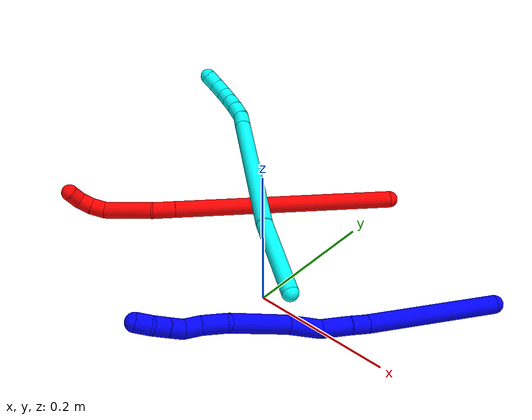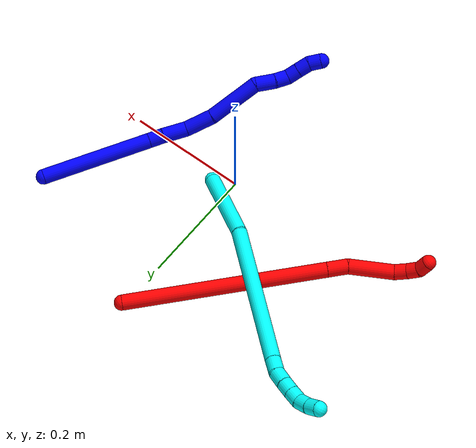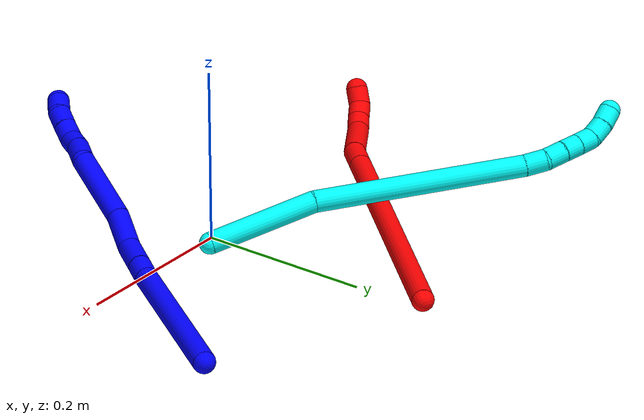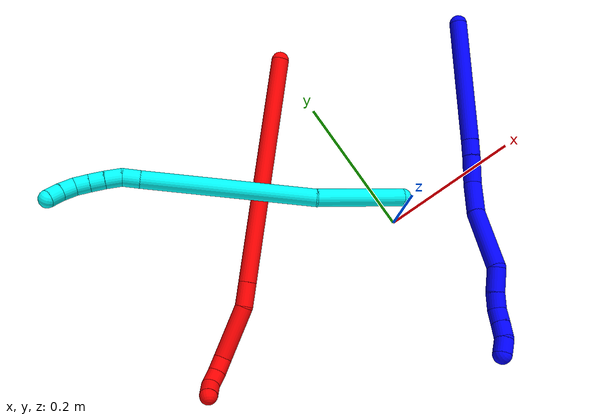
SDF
<sdf version="1.7">
 <world name="default">
  <plugin name="TubeGeneratorPlugin" filename="libtube_generator_plugin.so"/>
  <model name="photoneo_s_sensor">
   <static>1</static>
   <pose>0 0 2 1.57079 1.57079 3.14159</pose>
   <link name="link">
    <inertial><mass>0.1</mass></inertial>
    <sensor name="sensor" type="depth">
     <update_rate>30</update_rate>
     <camera>
      <horizontal_fov>1.22</horizontal_fov>
      <image><width>1920</width><height>1200</height><format>B8G8R8</format></image>
      <clip><near>0.1</near><far>4</far></clip>
      <depth_camera><output>points</output></depth_camera>
     </camera>
     <plugin name="camera_plugin" filename="libgazebo_ros_depth_camera.so">
      <baseline>0.2</baseline>
      <alwaysOn>1</alwaysOn>
      <updateRate>0.0</updateRate>
      <cameraName>camera_ir</cameraName>
      <imageTopicName>/camera/color/image_raw</imageTopicName>
      <cameraInfoTopicName>/camera/color/camera_info</cameraInfoTopicName>
      <depthImageTopicName>/camera/depth/image_raw</depthImageTopicName>
      <depthImageCameraInfoTopicName>/camera/depth/camera_info</depthImageCameraInfoTopicName>
      <pointCloudTopicName>/camera/depth/points</pointCloudTopicName>
      <frameName>fr_optical</frameName>
      <pointCloudCutoff>0.1</pointCloudCutoff>
      <pointCloudCutoffMax>2.0</pointCloudCutoffMax>
      <distortionK1>0</distortionK1>
      <distortionK2>0</distortionK2>
      <distortionK3>0</distortionK3>
      <distortionT1>0</distortionT1>
      <distortionT2>0</distortionT2>
      <CxPrime>0</CxPrime>
      <Cx>0</Cx>
      <Cy>0</Cy>
      <focalLength>0</focalLength>
      <hackBaseline>0</hackBaseline>
     </plugin>
    </sensor>
   </link>
  </model>
  <gravity>0 0 -9.8</gravity>
  <magnetic_field>6e-06 2.3e-05 -4.2e-05</magnetic_field>
  <atmosphere type="adiabatic"/>
  <physics name="default_physics" default="0" type="ode">
   <max_step_size>0.003</max_step_size>
   <real_time_factor>1</real_time_factor>
   <real_time_update_rate>1000</real_time_update_rate>
   <max_contacts>10000</max_contacts>
   <ode>
    <solver>
     <type>quick</type>
     <iters>100</iters>
     <sor>1.3</sor>
     <use_dynamic_moi_rescaling>0</use_dynamic_moi_rescaling>
    </solver>
    <constraints>
     <contact_max_correcting_vel>0</contact_max_correcting_vel>
     <contact_surface_layer>0.001</contact_surface_layer>
     <cfm>0</cfm>
     <erp>0.2</erp>
    </constraints>
   </ode>
  </physics>
  <scene><ambient>0.4 0.4 0.4 1</ambient><background>0.7 0.7 0.7 1</background><shadows>0</shadows></scene>
  <audio><device>default</device></audio>
  <spherical_coordinates>
   <surface_model>EARTH_WGS84</surface_model>
   <latitude_deg>0</latitude_deg>
   <longitude_deg>0</longitude_deg>
   <elevation>0</elevation>
   <heading_deg>0</heading_deg>
  </spherical_coordinates>
  <model name="bin">
   <static>1</static>
   <link name="bottom">
    <collision name="collision-bottom">
     <pose>0 0 -0.01 0 -0 0</pose>
     <geometry><box><size>0.8 0.6 0.02</size></box></geometry>
     <surface>
      <friction><ode><mu>100</mu><mu2>100</mu2></ode></friction>
      <contact><collide_bitmask>65535</collide_bitmask></contact>
     </surface>
    </collision>
   </link>
   <link name="west_wall">
    <collision name="collision-west_wall">
     <pose>-0.41 0 0.1 0 -0 0</pose>
     <geometry><box><size>0.02 0.6 0.2</size></box></geometry>
     <surface>
      <friction><ode><mu>100</mu><mu2>100</mu2></ode></friction>
      <contact><collide_bitmask>65535</collide_bitmask></contact>
     </surface>
    </collision>
   </link>
   <link name="east_wall">
    <collision name="collision-east_wall">
     <pose>0.41 0 0.1 0 -0 0</pose>
     <geometry><box><size>0.02 0.6 0.2</size></box></geometry>
     <surface>
      <friction><ode><mu>100</mu><mu2>100</mu2></ode></friction>
      <contact><collide_bitmask>65535</collide_bitmask></contact>
     </surface>
    </collision>
   </link>
   <link name="south_wall">
    <collision name="collision-south_wall">
     <pose>0 -0.31 0.1 0 -0 0</pose>
     <geometry><box><size>0.8 0.02 0.2</size></box></geometry>
     <surface>
      <friction><ode><mu>100</mu><mu2>100</mu2></ode></friction>
      <contact><collide_bitmask>65535</collide_bitmask></contact>
     </surface>
    </collision>
   </link>
   <link name="north_wall">
    <collision name="collision-north_wall">
     <pose>0 0.31 0.1 0 -0 0</pose>
     <geometry><box><size>0.8 0.02 0.2</size></box></geometry>
     <surface>
      <friction><ode><mu>100</mu><mu2>100</mu2></ode></friction>
      <contact><collide_bitmask>65535</collide_bitmask></contact>
     </surface>
    </collision>
   </link>
  </model>
  <model name="1">
   <static>0</static>
   <link name="1">
    <collision name="collision-cylinder-e_1_1_4">
     <pose>-0.037987 -0.076843 -0.031673 1.96175 -0.428699 -0.628805</pose>
     <geometry><cylinder><radius>0.0125</radius><length>0.182769</length></cylinder></geometry>
     <surface>
      <friction><ode><mu>1.16</mu><mu2>1.16</mu2><slip1>0</slip1><slip2>0</slip2></ode></friction>
      <contact><ode><kp>1e+06</kp><kd>1</kd><max_vel>0</max_vel><min_depth>0.001</min_depth></ode></contact>
     </surface>
    </collision>
    <visual name="visual-cylinder-e_1_1_4">
     <pose>-0.037987 -0.076843 -0.031673 1.96175 -0.428699 -0.628805</pose>
     <geometry><cylinder><radius>0.0125</radius><length>0.182769</length></cylinder></geometry>
     <material><ambient>0 0 1 1</ambient></material>
    </visual>
    <collision name="collision-cylinder-e_2_4_5">
     <pose>-0.081679 -0.163462 -0.06719 1.94546 -0.497472 -0.713701</pose>
     <geometry><cylinder><radius>0.0125</radius><length>0.023906</length></cylinder></geometry>
     <surface>
      <friction><ode><mu>1.16</mu><mu2>1.16</mu2><slip1>0</slip1><slip2>0</slip2></ode></friction>
      <contact><ode><kp>1e+06</kp><kd>1</kd><max_vel>0</max_vel><min_depth>0.001</min_depth></ode></contact>
     </surface>
    </collision>
    <visual name="visual-cylinder-e_2_4_5">
     <pose>-0.081679 -0.163462 -0.06719 1.94546 -0.497472 -0.713701</pose>
     <geometry><cylinder><radius>0.0125</radius><length>0.023906</length></cylinder></geometry>
     <material><ambient>0 0 1 1</ambient></material>
    </visual>
    <collision name="collision-cylinder-e_3_5_6">
     <pose>-0.09635 -0.189708 -0.078801 2.01144 -0.457589 -0.703972</pose>
     <geometry><cylinder><radius>0.0125</radius><length>0.040596</length></cylinder></geometry>
     <surface>
      <friction><ode><mu>1.16</mu><mu2>1.16</mu2><slip1>0</slip1><slip2>0</slip2></ode></friction>
      <contact><ode><kp>1e+06</kp><kd>1</kd><max_vel>0</max_vel><min_depth>0.001</min_depth></ode></contact>
     </surface>
    </collision>
    <visual name="visual-cylinder-e_3_5_6">
     <pose>-0.09635 -0.189708 -0.078801 2.01144 -0.457589 -0.703972</pose>
     <geometry><cylinder><radius>0.0125</radius><length>0.040596</length></cylinder></geometry>
     <material><ambient>0 0 1 1</ambient></material>
    </visual>
    <collision name="collision-cylinder-e_4_6_7">
     <pose>-0.120613 -0.223936 -0.090302 1.77807 -0.700365 -0.845761</pose>
     <geometry><cylinder><radius>0.0125</radius><length>0.047466</length></cylinder></geometry>
     <surface>
      <friction><ode><mu>1.16</mu><mu2>1.16</mu2><slip1>0</slip1><slip2>0</slip2></ode></friction>
      <contact><ode><kp>1e+06</kp><kd>1</kd><max_vel>0</max_vel><min_depth>0.001</min_depth></ode></contact>
     </surface>
    </collision>
    <visual name="visual-cylinder-e_4_6_7">
     <pose>-0.120613 -0.223936 -0.090302 1.77807 -0.700365 -0.845761</pose>
     <geometry><cylinder><radius>0.0125</radius><length>0.047466</length></cylinder></geometry>
     <material><ambient>0 0 1 1</ambient></material>
    </visual>
    <collision name="collision-cylinder-e_5_7_8">
     <pose>-0.160171 -0.278154 -0.093918 1.56755 -0.587145 -0.585351</pose>
     <geometry><cylinder><radius>0.0125</radius><length>0.087589</length></cylinder></geometry>
     <surface>
      <friction><ode><mu>1.16</mu><mu2>1.16</mu2><slip1>0</slip1><slip2>0</slip2></ode></friction>
      <contact><ode><kp>1e+06</kp><kd>1</kd><max_vel>0</max_vel><min_depth>0.001</min_depth></ode></contact>
     </surface>
    </collision>
    <visual name="visual-cylinder-e_5_7_8">
     <pose>-0.160171 -0.278154 -0.093918 1.56755 -0.587145 -0.585351</pose>
     <geometry><cylinder><radius>0.0125</radius><length>0.087589</length></cylinder></geometry>
     <material><ambient>0 0 1 1</ambient></material>
    </visual>
    <collision name="collision-cylinder-e_6_8_9">
     <pose>-0.191729 -0.326844 -0.101424 2.12822 -0.468647 -0.812356</pose>
     <geometry><cylinder><radius>0.0125</radius><length>0.032309</length></cylinder></geometry>
     <surface>
      <friction><ode><mu>1.16</mu><mu2>1.16</mu2><slip1>0</slip1><slip2>0</slip2></ode></friction>
      <contact><ode><kp>1e+06</kp><kd>1</kd><max_vel>0</max_vel><min_depth>0.001</min_depth></ode></contact>
     </surface>
    </collision>
    <visual name="visual-cylinder-e_6_8_9">
     <pose>-0.191729 -0.326844 -0.101424 2.12822 -0.468647 -0.812356</pose>
     <geometry><cylinder><radius>0.0125</radius><length>0.032309</length></cylinder></geometry>
     <material><ambient>0 0 1 1</ambient></material>
    </visual>
    <collision name="collision-cylinder-e_7_9_10">
     <pose>-0.203093 -0.348766 -0.113453 1.99739 -0.364955 -0.558174</pose>
     <geometry><cylinder><radius>0.0125</radius><length>0.022792</length></cylinder></geometry>
     <surface>
      <friction><ode><mu>1.16</mu><mu2>1.16</mu2><slip1>0</slip1><slip2>0</slip2></ode></friction>
      <contact><ode><kp>1e+06</kp><kd>1</kd><max_vel>0</max_vel><min_depth>0.001</min_depth></ode></contact>
     </surface>
    </collision>
    <visual name="visual-cylinder-e_7_9_10">
     <pose>-0.203093 -0.348766 -0.113453 1.99739 -0.364955 -0.558174</pose>
     <geometry><cylinder><radius>0.0125</radius><length>0.022792</length></cylinder></geometry>
     <material><ambient>0 0 1 1</ambient></material>
    </visual>
    <collision name="collision-cylinder-e_8_10_11">
     <pose>-0.213655 -0.366661 -0.118314 1.62626 -0.668944 -0.704108</pose>
     <geometry><cylinder><radius>0.0125</radius><length>0.020945</length></cylinder></geometry>
     <surface>
      <friction><ode><mu>1.16</mu><mu2>1.16</mu2><slip1>0</slip1><slip2>0</slip2></ode></friction>
      <contact><ode><kp>1e+06</kp><kd>1</kd><max_vel>0</max_vel><min_depth>0.001</min_depth></ode></contact>
     </surface>
    </collision>
    <visual name="visual-cylinder-e_8_10_11">
     <pose>-0.213655 -0.366661 -0.118314 1.62626 -0.668944 -0.704108</pose>
     <geometry><cylinder><radius>0.0125</radius><length>0.020945</length></cylinder></geometry>
     <material><ambient>0 0 1 1</ambient></material>
    </visual>
    <collision name="collision-cylinder-e_9_11_12">
     <pose>-0.226819 -0.382991 -0.119427 1.65164 -0.685643 -0.738502</pose>
     <geometry><cylinder><radius>0.0125</radius><length>0.021069</length></cylinder></geometry>
     <surface>
      <friction><ode><mu>1.16</mu><mu2>1.16</mu2><slip1>0</slip1><slip2>0</slip2></ode></friction>
      <contact><ode><kp>1e+06</kp><kd>1</kd><max_vel>0</max_vel><min_depth>0.001</min_depth></ode></contact>
     </surface>
    </collision>
    <visual name="visual-cylinder-e_9_11_12">
     <pose>-0.226819 -0.382991 -0.119427 1.65164 -0.685643 -0.738502</pose>
     <geometry><cylinder><radius>0.0125</radius><length>0.021069</length></cylinder></geometry>
     <material><ambient>0 0 1 1</ambient></material>
    </visual>
    <collision name="collision-cylinder-e_10_12_2">
     <pose>-0.240496 -0.397636 -0.123842 2.09355 -0.749922 -1.19578</pose>
     <geometry><cylinder><radius>0.0125</radius><length>0.02056</length></cylinder></geometry>
     <surface>
      <friction><ode><mu>1.16</mu><mu2>1.16</mu2><slip1>0</slip1><slip2>0</slip2></ode></friction>
      <contact><ode><kp>1e+06</kp><kd>1</kd><max_vel>0</max_vel><min_depth>0.001</min_depth></ode></contact>
     </surface>
    </collision>
    <visual name="visual-cylinder-e_10_12_2">
     <pose>-0.240496 -0.397636 -0.123842 2.09355 -0.749922 -1.19578</pose>
     <geometry><cylinder><radius>0.0125</radius><length>0.02056</length></cylinder></geometry>
     <material><ambient>0 0 1 1</ambient></material>
    </visual>
    <collision name="collision-sphere-2">
     <pose>-0.247503 -0.404153 -0.127597 0 -0 0</pose>
     <geometry><sphere><radius>0.0125</radius></sphere></geometry>
     <surface>
      <friction><ode><mu>1.16</mu><mu2>1.16</mu2><slip1>0</slip1><slip2>0</slip2></ode></friction>
      <contact><ode><kp>1e+06</kp><kd>1</kd><max_vel>0</max_vel><min_depth>0.001</min_depth></ode></contact>
     </surface>
    </collision>
    <visual name="visual-sphere-2">
     <pose>-0.247503 -0.404153 -0.127597 0 -0 0</pose>
     <geometry><sphere><radius>0.0125</radius></sphere></geometry>
     <material><ambient>0 0 1 1</ambient></material>
    </visual>
    <collision name="collision-sphere-12">
     <pose>-0.23349 -0.391118 -0.120086 0 -0 0</pose>
     <geometry><sphere><radius>0.0125</radius></sphere></geometry>
     <surface>
      <friction><ode><mu>1.16</mu><mu2>1.16</mu2><slip1>0</slip1><slip2>0</slip2></ode></friction>
      <contact><ode><kp>1e+06</kp><kd>1</kd><max_vel>0</max_vel><min_depth>0.001</min_depth></ode></contact>
     </surface>
    </collision>
    <visual name="visual-sphere-12">
     <pose>-0.23349 -0.391118 -0.120086 0 -0 0</pose>
     <geometry><sphere><radius>0.0125</radius></sphere></geometry>
     <material><ambient>0 0 1 1</ambient></material>
    </visual>
    <collision name="collision-sphere-11">
     <pose>-0.220149 -0.374863 -0.118769 0 -0 0</pose>
     <geometry><sphere><radius>0.0125</radius></sphere></geometry>
     <surface>
      <friction><ode><mu>1.16</mu><mu2>1.16</mu2><slip1>0</slip1><slip2>0</slip2></ode></friction>
      <contact><ode><kp>1e+06</kp><kd>1</kd><max_vel>0</max_vel><min_depth>0.001</min_depth></ode></contact>
     </surface>
    </collision>
    <visual name="visual-sphere-11">
     <pose>-0.220149 -0.374863 -0.118769 0 -0 0</pose>
     <geometry><sphere><radius>0.0125</radius></sphere></geometry>
     <material><ambient>0 0 1 1</ambient></material>
    </visual>
    <collision name="collision-sphere-10">
     <pose>-0.20716 -0.358458 -0.117858 0 -0 0</pose>
     <geometry><sphere><radius>0.0125</radius></sphere></geometry>
     <surface>
      <friction><ode><mu>1.16</mu><mu2>1.16</mu2><slip1>0</slip1><slip2>0</slip2></ode></friction>
      <contact><ode><kp>1e+06</kp><kd>1</kd><max_vel>0</max_vel><min_depth>0.001</min_depth></ode></contact>
     </surface>
    </collision>
    <visual name="visual-sphere-10">
     <pose>-0.20716 -0.358458 -0.117858 0 -0 0</pose>
     <geometry><sphere><radius>0.0125</radius></sphere></geometry>
     <material><ambient>0 0 1 1</ambient></material>
    </visual>
    <collision name="collision-sphere-9">
     <pose>-0.199025 -0.339075 -0.109049 0 -0 0</pose>
     <geometry><sphere><radius>0.0125</radius></sphere></geometry>
     <surface>
      <friction><ode><mu>1.16</mu><mu2>1.16</mu2><slip1>0</slip1><slip2>0</slip2></ode></friction>
      <contact><ode><kp>1e+06</kp><kd>1</kd><max_vel>0</max_vel><min_depth>0.001</min_depth></ode></contact>
     </surface>
    </collision>
    <visual name="visual-sphere-9">
     <pose>-0.199025 -0.339075 -0.109049 0 -0 0</pose>
     <geometry><sphere><radius>0.0125</radius></sphere></geometry>
     <material><ambient>0 0 1 1</ambient></material>
    </visual>
    <collision name="collision-sphere-4">
     <pose>-0.075975 -0.153686 -0.063346 0 -0 0</pose>
     <geometry><sphere><radius>0.0125</radius></sphere></geometry>
     <surface>
      <friction><ode><mu>1.16</mu><mu2>1.16</mu2><slip1>0</slip1><slip2>0</slip2></ode></friction>
      <contact><ode><kp>1e+06</kp><kd>1</kd><max_vel>0</max_vel><min_depth>0.001</min_depth></ode></contact>
     </surface>
    </collision>
    <visual name="visual-sphere-4">
     <pose>-0.075975 -0.153686 -0.063346 0 -0 0</pose>
     <geometry><sphere><radius>0.0125</radius></sphere></geometry>
     <material><ambient>0 0 1 1</ambient></material>
    </visual>
    <collision name="collision-sphere-1">
     <geometry><sphere><radius>0.0125</radius></sphere></geometry>
     <surface>
      <friction><ode><mu>1.16</mu><mu2>1.16</mu2><slip1>0</slip1><slip2>0</slip2></ode></friction>
      <contact><ode><kp>1e+06</kp><kd>1</kd><max_vel>0</max_vel><min_depth>0.001</min_depth></ode></contact>
     </surface>
    </collision>
    <visual name="visual-sphere-1">
     <geometry><sphere><radius>0.0125</radius></sphere></geometry>
     <material><ambient>0 0 1 1</ambient></material>
    </visual>
    <collision name="collision-sphere-8">
     <pose>-0.184432 -0.314614 -0.0938 0 -0 0</pose>
     <geometry><sphere><radius>0.0125</radius></sphere></geometry>
     <surface>
      <friction><ode><mu>1.16</mu><mu2>1.16</mu2><slip1>0</slip1><slip2>0</slip2></ode></friction>
      <contact><ode><kp>1e+06</kp><kd>1</kd><max_vel>0</max_vel><min_depth>0.001</min_depth></ode></contact>
     </surface>
    </collision>
    <visual name="visual-sphere-8">
     <pose>-0.184432 -0.314614 -0.0938 0 -0 0</pose>
     <geometry><sphere><radius>0.0125</radius></sphere></geometry>
     <material><ambient>0 0 1 1</ambient></material>
    </visual>
    <collision name="collision-sphere-5">
     <pose>-0.087383 -0.173237 -0.071034 0 -0 0</pose>
     <geometry><sphere><radius>0.0125</radius></sphere></geometry>
     <surface>
      <friction><ode><mu>1.16</mu><mu2>1.16</mu2><slip1>0</slip1><slip2>0</slip2></ode></friction>
      <contact><ode><kp>1e+06</kp><kd>1</kd><max_vel>0</max_vel><min_depth>0.001</min_depth></ode></contact>
     </surface>
    </collision>
    <visual name="visual-sphere-5">
     <pose>-0.087383 -0.173237 -0.071034 0 -0 0</pose>
     <geometry><sphere><radius>0.0125</radius></sphere></geometry>
     <material><ambient>0 0 1 1</ambient></material>
    </visual>
    <collision name="collision-sphere-6">
     <pose>-0.105318 -0.206178 -0.086568 0 -0 0</pose>
     <geometry><sphere><radius>0.0125</radius></sphere></geometry>
     <surface>
      <friction><ode><mu>1.16</mu><mu2>1.16</mu2><slip1>0</slip1><slip2>0</slip2></ode></friction>
      <contact><ode><kp>1e+06</kp><kd>1</kd><max_vel>0</max_vel><min_depth>0.001</min_depth></ode></contact>
     </surface>
    </collision>
    <visual name="visual-sphere-6">
     <pose>-0.105318 -0.206178 -0.086568 0 -0 0</pose>
     <geometry><sphere><radius>0.0125</radius></sphere></geometry>
     <material><ambient>0 0 1 1</ambient></material>
    </visual>
    <collision name="collision-sphere-7">
     <pose>-0.135909 -0.241694 -0.094037 0 -0 0</pose>
     <geometry><sphere><radius>0.0125</radius></sphere></geometry>
     <surface>
      <friction><ode><mu>1.16</mu><mu2>1.16</mu2><slip1>0</slip1><slip2>0</slip2></ode></friction>
      <contact><ode><kp>1e+06</kp><kd>1</kd><max_vel>0</max_vel><min_depth>0.001</min_depth></ode></contact>
     </surface>
    </collision>
    <visual name="visual-sphere-7">
     <pose>-0.135909 -0.241694 -0.094037 0 -0 0</pose>
     <geometry><sphere><radius>0.0125</radius></sphere></geometry>
     <material><ambient>0 0 1 1</ambient></material>
    </visual>
    <inertial>
     <pose>-0.115166 -0.206159 -0.073019 0 -0 0</pose>
     <mass>0.5</mass>
     <inertia>
      <ixx>9.8e-05</ixx>
      <ixy>0</ixy>
      <ixz>0</ixz>
      <iyy>-0.000372</iyy>
      <iyz>0</iyz>
      <izz>0.000761</izz>
     </inertia>
    </inertial>
   </link>
   <pose>0.250514 0.186525 0.012281 0.041297 0.857201 0.037795</pose>
  </model>
  <model name="2">
   <static>0</static>
   <link name="2">
    <collision name="collision-cylinder-e_1_1_4">
     <pose>-0.076394 -0.055515 -0.134651 2.75054 -0.483072 -1.78727</pose>
     <geometry><cylinder><radius>0.0125</radius><length>0.32893</length></cylinder></geometry>
     <surface>
      <friction><ode><mu>1.16</mu><mu2>1.16</mu2><slip1>0</slip1><slip2>0</slip2></ode></friction>
      <contact><ode><kp>1e+06</kp><kd>1</kd><max_vel>0</max_vel><min_depth>0.001</min_depth></ode></contact>
     </surface>
    </collision>
    <visual name="visual-cylinder-e_1_1_4">
     <pose>-0.076394 -0.055515 -0.134651 2.75054 -0.483072 -1.78727</pose>
     <geometry><cylinder><radius>0.0125</radius><length>0.32893</length></cylinder></geometry>
     <material><ambient>1 0 0 1</ambient></material>
    </visual>
    <collision name="collision-cylinder-e_2_4_5">
     <pose>-0.160636 -0.116705 -0.283134 2.75223 -0.483338 -1.79215</pose>
     <geometry><cylinder><radius>0.0125</radius><length>0.033773</length></cylinder></geometry>
     <surface>
      <friction><ode><mu>1.16</mu><mu2>1.16</mu2><slip1>0</slip1><slip2>0</slip2></ode></friction>
      <contact><ode><kp>1e+06</kp><kd>1</kd><max_vel>0</max_vel><min_depth>0.001</min_depth></ode></contact>
     </surface>
    </collision>
    <visual name="visual-cylinder-e_2_4_5">
     <pose>-0.160636 -0.116705 -0.283134 2.75223 -0.483338 -1.79215</pose>
     <geometry><cylinder><radius>0.0125</radius><length>0.033773</length></cylinder></geometry>
     <material><ambient>1 0 0 1</ambient></material>
    </visual>
    <collision name="collision-cylinder-e_3_5_6">
     <pose>-0.18643 -0.143885 -0.3219 2.4299 -0.499023 -1.20201</pose>
     <geometry><cylinder><radius>0.0125</radius><length>0.074998</length></cylinder></geometry>
     <surface>
      <friction><ode><mu>1.16</mu><mu2>1.16</mu2><slip1>0</slip1><slip2>0</slip2></ode></friction>
      <contact><ode><kp>1e+06</kp><kd>1</kd><max_vel>0</max_vel><min_depth>0.001</min_depth></ode></contact>
     </surface>
    </collision>
    <visual name="visual-cylinder-e_3_5_6">
     <pose>-0.18643 -0.143885 -0.3219 2.4299 -0.499023 -1.20201</pose>
     <geometry><cylinder><radius>0.0125</radius><length>0.074998</length></cylinder></geometry>
     <material><ambient>1 0 0 1</ambient></material>
    </visual>
    <collision name="collision-cylinder-e_4_6_7">
     <pose>-0.206336 -0.170799 -0.356054 2.61101 -0.181417 -0.646104</pose>
     <geometry><cylinder><radius>0.0125</radius><length>0.021737</length></cylinder></geometry>
     <surface>
      <friction><ode><mu>1.16</mu><mu2>1.16</mu2><slip1>0</slip1><slip2>0</slip2></ode></friction>
      <contact><ode><kp>1e+06</kp><kd>1</kd><max_vel>0</max_vel><min_depth>0.001</min_depth></ode></contact>
     </surface>
    </collision>
    <visual name="visual-cylinder-e_4_6_7">
     <pose>-0.206336 -0.170799 -0.356054 2.61101 -0.181417 -0.646104</pose>
     <geometry><cylinder><radius>0.0125</radius><length>0.021737</length></cylinder></geometry>
     <material><ambient>1 0 0 1</ambient></material>
    </visual>
    <collision name="collision-cylinder-e_5_7_8">
     <pose>-0.208043 -0.181008 -0.374092 2.64315 0.0253 0.099327</pose>
     <geometry><cylinder><radius>0.0125</radius><length>0.020086</length></cylinder></geometry>
     <surface>
      <friction><ode><mu>1.16</mu><mu2>1.16</mu2><slip1>0</slip1><slip2>0</slip2></ode></friction>
      <contact><ode><kp>1e+06</kp><kd>1</kd><max_vel>0</max_vel><min_depth>0.001</min_depth></ode></contact>
     </surface>
    </collision>
    <visual name="visual-cylinder-e_5_7_8">
     <pose>-0.208043 -0.181008 -0.374092 2.64315 0.0253 0.099327</pose>
     <geometry><cylinder><radius>0.0125</radius><length>0.020086</length></cylinder></geometry>
     <material><ambient>1 0 0 1</ambient></material>
    </visual>
    <collision name="collision-cylinder-e_6_8_2">
     <pose>-0.204469 -0.186812 -0.392543 3.03779 0.330286 2.53729</pose>
     <geometry><cylinder><radius>0.0125</radius><length>0.020477</length></cylinder></geometry>
     <surface>
      <friction><ode><mu>1.16</mu><mu2>1.16</mu2><slip1>0</slip1><slip2>0</slip2></ode></friction>
      <contact><ode><kp>1e+06</kp><kd>1</kd><max_vel>0</max_vel><min_depth>0.001</min_depth></ode></contact>
     </surface>
    </collision>
    <visual name="visual-cylinder-e_6_8_2">
     <pose>-0.204469 -0.186812 -0.392543 3.03779 0.330286 2.53729</pose>
     <geometry><cylinder><radius>0.0125</radius><length>0.020477</length></cylinder></geometry>
     <material><ambient>1 0 0 1</ambient></material>
    </visual>
    <collision name="collision-sphere-2">
     <pose>-0.201148 -0.187815 -0.402176 0 -0 0</pose>
     <geometry><sphere><radius>0.0125</radius></sphere></geometry>
     <surface>
      <friction><ode><mu>1.16</mu><mu2>1.16</mu2><slip1>0</slip1><slip2>0</slip2></ode></friction>
      <contact><ode><kp>1e+06</kp><kd>1</kd><max_vel>0</max_vel><min_depth>0.001</min_depth></ode></contact>
     </surface>
    </collision>
    <visual name="visual-sphere-2">
     <pose>-0.201148 -0.187815 -0.402176 0 -0 0</pose>
     <geometry><sphere><radius>0.0125</radius></sphere></geometry>
     <material><ambient>1 0 0 1</ambient></material>
    </visual>
    <collision name="collision-sphere-4">
     <pose>-0.152788 -0.111029 -0.269301 0 -0 0</pose>
     <geometry><sphere><radius>0.0125</radius></sphere></geometry>
     <surface>
      <friction><ode><mu>1.16</mu><mu2>1.16</mu2><slip1>0</slip1><slip2>0</slip2></ode></friction>
      <contact><ode><kp>1e+06</kp><kd>1</kd><max_vel>0</max_vel><min_depth>0.001</min_depth></ode></contact>
     </surface>
    </collision>
    <visual name="visual-sphere-4">
     <pose>-0.152788 -0.111029 -0.269301 0 -0 0</pose>
     <geometry><sphere><radius>0.0125</radius></sphere></geometry>
     <material><ambient>1 0 0 1</ambient></material>
    </visual>
    <collision name="collision-sphere-1">
     <geometry><sphere><radius>0.0125</radius></sphere></geometry>
     <surface>
      <friction><ode><mu>1.16</mu><mu2>1.16</mu2><slip1>0</slip1><slip2>0</slip2></ode></friction>
      <contact><ode><kp>1e+06</kp><kd>1</kd><max_vel>0</max_vel><min_depth>0.001</min_depth></ode></contact>
     </surface>
    </collision>
    <visual name="visual-sphere-1">
     <geometry><sphere><radius>0.0125</radius></sphere></geometry>
     <material><ambient>1 0 0 1</ambient></material>
    </visual>
    <collision name="collision-sphere-8">
     <pose>-0.207789 -0.185808 -0.38291 0 -0 0</pose>
     <geometry><sphere><radius>0.0125</radius></sphere></geometry>
     <surface>
      <friction><ode><mu>1.16</mu><mu2>1.16</mu2><slip1>0</slip1><slip2>0</slip2></ode></friction>
      <contact><ode><kp>1e+06</kp><kd>1</kd><max_vel>0</max_vel><min_depth>0.001</min_depth></ode></contact>
     </surface>
    </collision>
    <visual name="visual-sphere-8">
     <pose>-0.207789 -0.185808 -0.38291 0 -0 0</pose>
     <geometry><sphere><radius>0.0125</radius></sphere></geometry>
     <material><ambient>1 0 0 1</ambient></material>
    </visual>
    <collision name="collision-sphere-5">
     <pose>-0.168484 -0.122381 -0.296967 0 -0 0</pose>
     <geometry><sphere><radius>0.0125</radius></sphere></geometry>
     <surface>
      <friction><ode><mu>1.16</mu><mu2>1.16</mu2><slip1>0</slip1><slip2>0</slip2></ode></friction>
      <contact><ode><kp>1e+06</kp><kd>1</kd><max_vel>0</max_vel><min_depth>0.001</min_depth></ode></contact>
     </surface>
    </collision>
    <visual name="visual-sphere-5">
     <pose>-0.168484 -0.122381 -0.296967 0 -0 0</pose>
     <geometry><sphere><radius>0.0125</radius></sphere></geometry>
     <material><ambient>1 0 0 1</ambient></material>
    </visual>
    <collision name="collision-sphere-6">
     <pose>-0.204375 -0.16539 -0.346833 0 -0 0</pose>
     <geometry><sphere><radius>0.0125</radius></sphere></geometry>
     <surface>
      <friction><ode><mu>1.16</mu><mu2>1.16</mu2><slip1>0</slip1><slip2>0</slip2></ode></friction>
      <contact><ode><kp>1e+06</kp><kd>1</kd><max_vel>0</max_vel><min_depth>0.001</min_depth></ode></contact>
     </surface>
    </collision>
    <visual name="visual-sphere-6">
     <pose>-0.204375 -0.16539 -0.346833 0 -0 0</pose>
     <geometry><sphere><radius>0.0125</radius></sphere></geometry>
     <material><ambient>1 0 0 1</ambient></material>
    </visual>
    <collision name="collision-sphere-7">
     <pose>-0.208297 -0.176209 -0.365274 0 -0 0</pose>
     <geometry><sphere><radius>0.0125</radius></sphere></geometry>
     <surface>
      <friction><ode><mu>1.16</mu><mu2>1.16</mu2><slip1>0</slip1><slip2>0</slip2></ode></friction>
      <contact><ode><kp>1e+06</kp><kd>1</kd><max_vel>0</max_vel><min_depth>0.001</min_depth></ode></contact>
     </surface>
    </collision>
    <visual name="visual-sphere-7">
     <pose>-0.208297 -0.176209 -0.365274 0 -0 0</pose>
     <geometry><sphere><radius>0.0125</radius></sphere></geometry>
     <material><ambient>1 0 0 1</ambient></material>
    </visual>
    <inertial>
     <pose>-0.114772 -0.088333 -0.202572 0 -0 0</pose>
     <mass>0.5</mass>
     <inertia>
      <ixx>-0.003181</ixx>
      <ixy>0</ixy>
      <ixz>0</ixz>
      <iyy>-0.001518</iyy>
      <iyz>0</iyz>
      <izz>0.002403</izz>
     </inertia>
    </inertial>
   </link>
   <pose>0.001865 0.288501 0.012353 2.95641 -0.989996 1.33742</pose>
  </model>
  <model name="3">
   <static>0</static>
   <link name="3">
    <collision name="collision-cylinder-e_1_1_4">
     <pose>-0.05032 0.034862 -0.015199 -1.98192 -0.923606 1.29964</pose>
     <geometry><cylinder><radius>0.0125</radius><length>0.126149</length></cylinder></geometry>
     <surface>
      <friction><ode><mu>1.16</mu><mu2>1.16</mu2><slip1>0</slip1><slip2>0</slip2></ode></friction>
      <contact><ode><kp>1e+06</kp><kd>1</kd><max_vel>0</max_vel><min_depth>0.001</min_depth></ode></contact>
     </surface>
    </collision>
    <visual name="visual-cylinder-e_1_1_4">
     <pose>-0.05032 0.034862 -0.015199 -1.98192 -0.923606 1.29964</pose>
     <geometry><cylinder><radius>0.0125</radius><length>0.126149</length></cylinder></geometry>
     <material><ambient>0.003922 1 0.996078 1</ambient></material>
    </visual>
    <collision name="collision-cylinder-e_2_4_5">
     <pose>-0.180638 0.156396 -0.059192 -1.89155 -0.719353 0.960878</pose>
     <geometry><cylinder><radius>0.0125</radius><length>0.242826</length></cylinder></geometry>
     <surface>
      <friction><ode><mu>1.16</mu><mu2>1.16</mu2><slip1>0</slip1><slip2>0</slip2></ode></friction>
      <contact><ode><kp>1e+06</kp><kd>1</kd><max_vel>0</max_vel><min_depth>0.001</min_depth></ode></contact>
     </surface>
    </collision>
    <visual name="visual-cylinder-e_2_4_5">
     <pose>-0.180638 0.156396 -0.059192 -1.89155 -0.719353 0.960878</pose>
     <geometry><cylinder><radius>0.0125</radius><length>0.242826</length></cylinder></geometry>
     <material><ambient>0.003922 1 0.996078 1</ambient></material>
    </visual>
    <collision name="collision-cylinder-e_3_5_6">
     <pose>-0.269822 0.251371 -0.090183 -1.82951 -0.81902 1.02685</pose>
     <geometry><cylinder><radius>0.0125</radius><length>0.02515</length></cylinder></geometry>
     <surface>
      <friction><ode><mu>1.16</mu><mu2>1.16</mu2><slip1>0</slip1><slip2>0</slip2></ode></friction>
      <contact><ode><kp>1e+06</kp><kd>1</kd><max_vel>0</max_vel><min_depth>0.001</min_depth></ode></contact>
     </surface>
    </collision>
    <visual name="visual-cylinder-e_3_5_6">
     <pose>-0.269822 0.251371 -0.090183 -1.82951 -0.81902 1.02685</pose>
     <geometry><cylinder><radius>0.0125</radius><length>0.02515</length></cylinder></geometry>
     <material><ambient>0.003922 1 0.996078 1</ambient></material>
    </visual>
    <collision name="collision-cylinder-e_4_6_7">
     <pose>-0.288554 0.265109 -0.096677 -2.23968 -0.942891 1.62219</pose>
     <geometry><cylinder><radius>0.0125</radius><length>0.023591</length></cylinder></geometry>
     <surface>
      <friction><ode><mu>1.16</mu><mu2>1.16</mu2><slip1>0</slip1><slip2>0</slip2></ode></friction>
      <contact><ode><kp>1e+06</kp><kd>1</kd><max_vel>0</max_vel><min_depth>0.001</min_depth></ode></contact>
     </surface>
    </collision>
    <visual name="visual-cylinder-e_4_6_7">
     <pose>-0.288554 0.265109 -0.096677 -2.23968 -0.942891 1.62219</pose>
     <geometry><cylinder><radius>0.0125</radius><length>0.023591</length></cylinder></geometry>
     <material><ambient>0.003922 1 0.996078 1</ambient></material>
    </visual>
    <collision name="collision-cylinder-e_5_7_8">
     <pose>-0.306167 0.275043 -0.10525 -2.33074 -0.915103 1.70773</pose>
     <geometry><cylinder><radius>0.0125</radius><length>0.020357</length></cylinder></geometry>
     <surface>
      <friction><ode><mu>1.16</mu><mu2>1.16</mu2><slip1>0</slip1><slip2>0</slip2></ode></friction>
      <contact><ode><kp>1e+06</kp><kd>1</kd><max_vel>0</max_vel><min_depth>0.001</min_depth></ode></contact>
     </surface>
    </collision>
    <visual name="visual-cylinder-e_5_7_8">
     <pose>-0.306167 0.275043 -0.10525 -2.33074 -0.915103 1.70773</pose>
     <geometry><cylinder><radius>0.0125</radius><length>0.020357</length></cylinder></geometry>
     <material><ambient>0.003922 1 0.996078 1</ambient></material>
    </visual>
    <collision name="collision-cylinder-e_6_8_9">
     <pose>-0.322383 0.283733 -0.113912 -2.37908 -0.930692 1.79413</pose>
     <geometry><cylinder><radius>0.0125</radius><length>0.020318</length></cylinder></geometry>
     <surface>
      <friction><ode><mu>1.16</mu><mu2>1.16</mu2><slip1>0</slip1><slip2>0</slip2></ode></friction>
      <contact><ode><kp>1e+06</kp><kd>1</kd><max_vel>0</max_vel><min_depth>0.001</min_depth></ode></contact>
     </surface>
    </collision>
    <visual name="visual-cylinder-e_6_8_9">
     <pose>-0.322383 0.283733 -0.113912 -2.37908 -0.930692 1.79413</pose>
     <geometry><cylinder><radius>0.0125</radius><length>0.020318</length></cylinder></geometry>
     <material><ambient>0.003922 1 0.996078 1</ambient></material>
    </visual>
    <collision name="collision-cylinder-e_7_9_10">
     <pose>-0.340518 0.288917 -0.121886 -2.87154 -1.21421 2.75531</pose>
     <geometry><cylinder><radius>0.0125</radius><length>0.021316</length></cylinder></geometry>
     <surface>
      <friction><ode><mu>1.16</mu><mu2>1.16</mu2><slip1>0</slip1><slip2>0</slip2></ode></friction>
      <contact><ode><kp>1e+06</kp><kd>1</kd><max_vel>0</max_vel><min_depth>0.001</min_depth></ode></contact>
     </surface>
    </collision>
    <visual name="visual-cylinder-e_7_9_10">
     <pose>-0.340518 0.288917 -0.121886 -2.87154 -1.21421 2.75531</pose>
     <geometry><cylinder><radius>0.0125</radius><length>0.021316</length></cylinder></geometry>
     <material><ambient>0.003922 1 0.996078 1</ambient></material>
    </visual>
    <collision name="collision-cylinder-e_8_10_2">
     <pose>-0.360158 0.289073 -0.128485 2.87072 -1.25741 -2.77107</pose>
     <geometry><cylinder><radius>0.0125</radius><length>0.020293</length></cylinder></geometry>
     <surface>
      <friction><ode><mu>1.16</mu><mu2>1.16</mu2><slip1>0</slip1><slip2>0</slip2></ode></friction>
      <contact><ode><kp>1e+06</kp><kd>1</kd><max_vel>0</max_vel><min_depth>0.001</min_depth></ode></contact>
     </surface>
    </collision>
    <visual name="visual-cylinder-e_8_10_2">
     <pose>-0.360158 0.289073 -0.128485 2.87072 -1.25741 -2.77107</pose>
     <geometry><cylinder><radius>0.0125</radius><length>0.020293</length></cylinder></geometry>
     <material><ambient>0.003922 1 0.996078 1</ambient></material>
    </visual>
    <collision name="collision-sphere-2">
     <pose>-0.369811 0.288236 -0.131499 0 -0 0</pose>
     <geometry><sphere><radius>0.0125</radius></sphere></geometry>
     <surface>
      <friction><ode><mu>1.16</mu><mu2>1.16</mu2><slip1>0</slip1><slip2>0</slip2></ode></friction>
      <contact><ode><kp>1e+06</kp><kd>1</kd><max_vel>0</max_vel><min_depth>0.001</min_depth></ode></contact>
     </surface>
    </collision>
    <visual name="visual-sphere-2">
     <pose>-0.369811 0.288236 -0.131499 0 -0 0</pose>
     <geometry><sphere><radius>0.0125</radius></sphere></geometry>
     <material><ambient>0.003922 1 0.996078 1</ambient></material>
    </visual>
    <collision name="collision-sphere-10">
     <pose>-0.350506 0.28991 -0.125471 0 -0 0</pose>
     <geometry><sphere><radius>0.0125</radius></sphere></geometry>
     <surface>
      <friction><ode><mu>1.16</mu><mu2>1.16</mu2><slip1>0</slip1><slip2>0</slip2></ode></friction>
      <contact><ode><kp>1e+06</kp><kd>1</kd><max_vel>0</max_vel><min_depth>0.001</min_depth></ode></contact>
     </surface>
    </collision>
    <visual name="visual-sphere-10">
     <pose>-0.350506 0.28991 -0.125471 0 -0 0</pose>
     <geometry><sphere><radius>0.0125</radius></sphere></geometry>
     <material><ambient>0.003922 1 0.996078 1</ambient></material>
    </visual>
    <collision name="collision-sphere-9">
     <pose>-0.330531 0.287925 -0.1183 0 -0 0</pose>
     <geometry><sphere><radius>0.0125</radius></sphere></geometry>
     <surface>
      <friction><ode><mu>1.16</mu><mu2>1.16</mu2><slip1>0</slip1><slip2>0</slip2></ode></friction>
      <contact><ode><kp>1e+06</kp><kd>1</kd><max_vel>0</max_vel><min_depth>0.001</min_depth></ode></contact>
     </surface>
    </collision>
    <visual name="visual-sphere-9">
     <pose>-0.330531 0.287925 -0.1183 0 -0 0</pose>
     <geometry><sphere><radius>0.0125</radius></sphere></geometry>
     <material><ambient>0.003922 1 0.996078 1</ambient></material>
    </visual>
    <collision name="collision-sphere-4">
     <pose>-0.100639 0.069723 -0.030397 0 -0 0</pose>
     <geometry><sphere><radius>0.0125</radius></sphere></geometry>
     <surface>
      <friction><ode><mu>1.16</mu><mu2>1.16</mu2><slip1>0</slip1><slip2>0</slip2></ode></friction>
      <contact><ode><kp>1e+06</kp><kd>1</kd><max_vel>0</max_vel><min_depth>0.001</min_depth></ode></contact>
     </surface>
    </collision>
    <visual name="visual-sphere-4">
     <pose>-0.100639 0.069723 -0.030397 0 -0 0</pose>
     <geometry><sphere><radius>0.0125</radius></sphere></geometry>
     <material><ambient>0.003922 1 0.996078 1</ambient></material>
    </visual>
    <collision name="collision-sphere-1">
     <geometry><sphere><radius>0.0125</radius></sphere></geometry>
     <surface>
      <friction><ode><mu>1.16</mu><mu2>1.16</mu2><slip1>0</slip1><slip2>0</slip2></ode></friction>
      <contact><ode><kp>1e+06</kp><kd>1</kd><max_vel>0</max_vel><min_depth>0.001</min_depth></ode></contact>
     </surface>
    </collision>
    <visual name="visual-sphere-1">
     <geometry><sphere><radius>0.0125</radius></sphere></geometry>
     <material><ambient>0.003922 1 0.996078 1</ambient></material>
    </visual>
    <collision name="collision-sphere-8">
     <pose>-0.314235 0.279542 -0.109525 0 -0 0</pose>
     <geometry><sphere><radius>0.0125</radius></sphere></geometry>
     <surface>
      <friction><ode><mu>1.16</mu><mu2>1.16</mu2><slip1>0</slip1><slip2>0</slip2></ode></friction>
      <contact><ode><kp>1e+06</kp><kd>1</kd><max_vel>0</max_vel><min_depth>0.001</min_depth></ode></contact>
     </surface>
    </collision>
    <visual name="visual-sphere-8">
     <pose>-0.314235 0.279542 -0.109525 0 -0 0</pose>
     <geometry><sphere><radius>0.0125</radius></sphere></geometry>
     <material><ambient>0.003922 1 0.996078 1</ambient></material>
    </visual>
    <collision name="collision-sphere-5">
     <pose>-0.260637 0.243069 -0.087986 0 -0 0</pose>
     <geometry><sphere><radius>0.0125</radius></sphere></geometry>
     <surface>
      <friction><ode><mu>1.16</mu><mu2>1.16</mu2><slip1>0</slip1><slip2>0</slip2></ode></friction>
      <contact><ode><kp>1e+06</kp><kd>1</kd><max_vel>0</max_vel><min_depth>0.001</min_depth></ode></contact>
     </surface>
    </collision>
    <visual name="visual-sphere-5">
     <pose>-0.260637 0.243069 -0.087986 0 -0 0</pose>
     <geometry><sphere><radius>0.0125</radius></sphere></geometry>
     <material><ambient>0.003922 1 0.996078 1</ambient></material>
    </visual>
    <collision name="collision-sphere-6">
     <pose>-0.279008 0.259673 -0.092381 0 -0 0</pose>
     <geometry><sphere><radius>0.0125</radius></sphere></geometry>
     <surface>
      <friction><ode><mu>1.16</mu><mu2>1.16</mu2><slip1>0</slip1><slip2>0</slip2></ode></friction>
      <contact><ode><kp>1e+06</kp><kd>1</kd><max_vel>0</max_vel><min_depth>0.001</min_depth></ode></contact>
     </surface>
    </collision>
    <visual name="visual-sphere-6">
     <pose>-0.279008 0.259673 -0.092381 0 -0 0</pose>
     <geometry><sphere><radius>0.0125</radius></sphere></geometry>
     <material><ambient>0.003922 1 0.996078 1</ambient></material>
    </visual>
    <collision name="collision-sphere-7">
     <pose>-0.298099 0.270545 -0.100974 0 -0 0</pose>
     <geometry><sphere><radius>0.0125</radius></sphere></geometry>
     <surface>
      <friction><ode><mu>1.16</mu><mu2>1.16</mu2><slip1>0</slip1><slip2>0</slip2></ode></friction>
      <contact><ode><kp>1e+06</kp><kd>1</kd><max_vel>0</max_vel><min_depth>0.001</min_depth></ode></contact>
     </surface>
    </collision>
    <visual name="visual-sphere-7">
     <pose>-0.298099 0.270545 -0.100974 0 -0 0</pose>
     <geometry><sphere><radius>0.0125</radius></sphere></geometry>
     <material><ambient>0.003922 1 0.996078 1</ambient></material>
    </visual>
    <inertial>
     <pose>-0.182309 0.156679 -0.061004 0 -0 0</pose>
     <mass>0.5</mass>
     <inertia>
      <ixx>0.001363</ixx>
      <ixy>0</ixy>
      <ixz>0</ixz>
      <iyy>0.001378</iyy>
      <iyz>0</iyz>
      <izz>-2.9e-05</izz>
     </inertia>
    </inertial>
   </link>
   <pose>0.029856 0.021809 0.012157 -0.545224 0.794788 -0.18426</pose>
  </model>
 </world>
</sdf>
